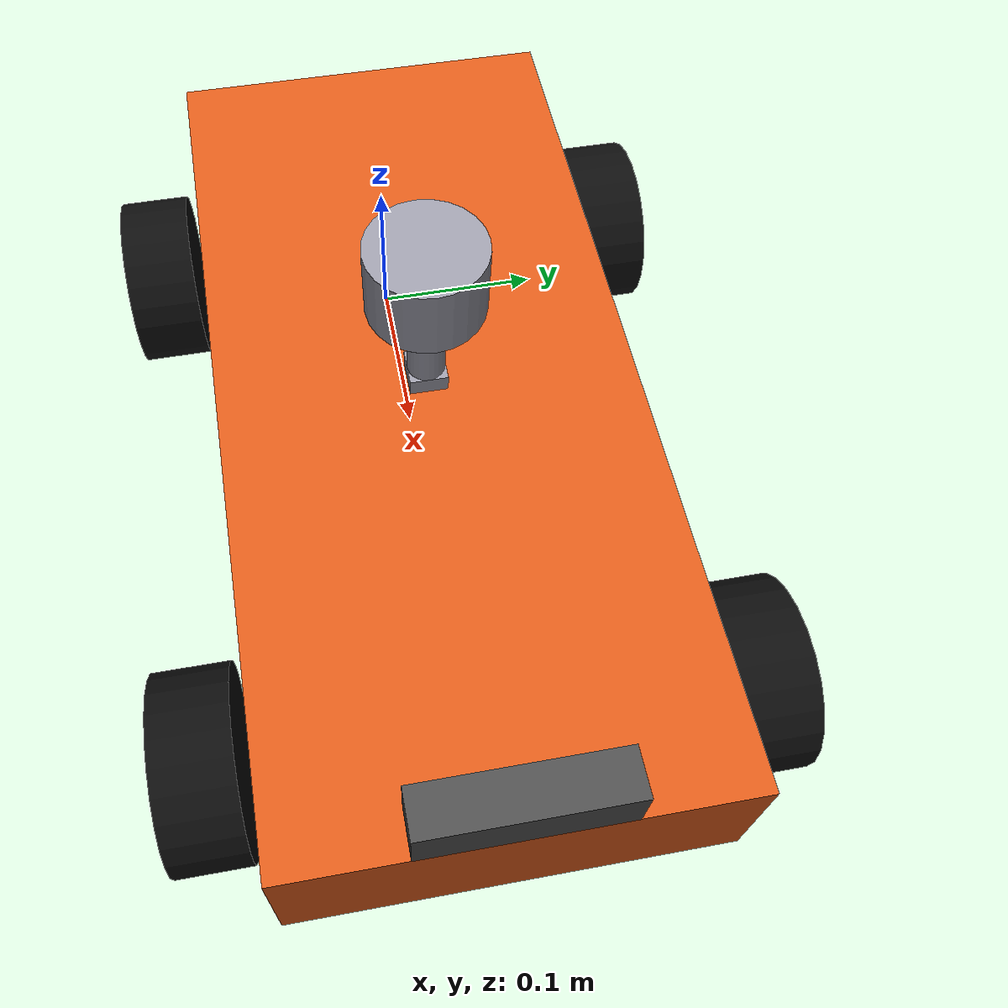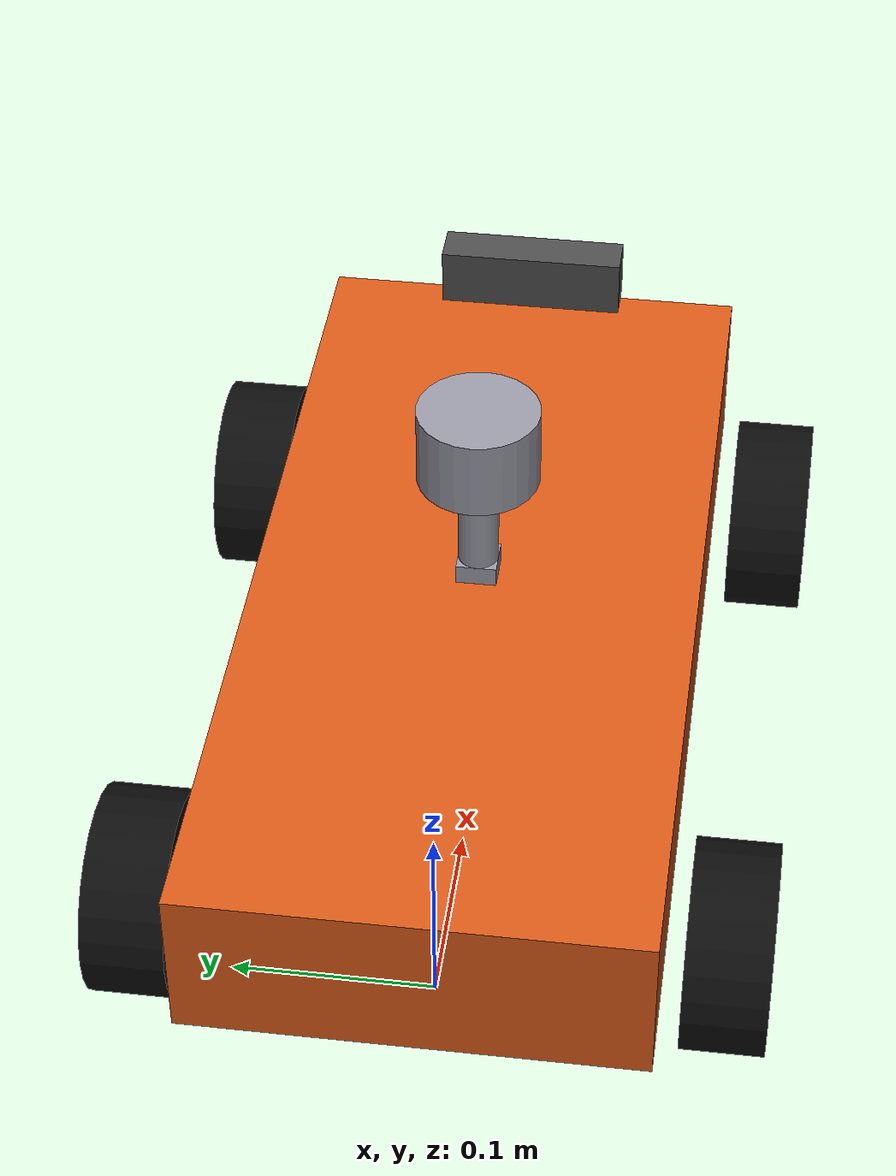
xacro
<?xml version="1.0"?>
<!-- Front-steered four-wheel car (Ackermann steering); see ackermann_car_macro.xacro. -->
<robot name="ackermann_car" xmlns:xacro="http://ros.org/wiki/xacro">
  <xacro:arg name="is_ignition" default="true"/>
  <xacro:arg name="is_sim" default="true"/>
  <!-- Gazebo model name (the launch passes the spawned robot_name; anti_ackermann_car reuses this file). -->
  <xacro:arg name="model_name" default="ackermann_car"/>
  <xacro:include filename="$(find robot_lab_robots)/description_common/urdf/oakd_camera.xacro"/>
  <xacro:include filename="$(find robot_lab_robots)/ackermann_car/urdf/ackermann_car_macro.xacro"/>
  <xacro:ackermann_car robot_name="ackermann_car" steer_axle="front"/>
</robot>

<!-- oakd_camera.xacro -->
<robot xmlns:xacro="http://ros.org/wiki/xacro">

  <xacro:macro name="dummy_inertial">
    <inertial>
      <mass value="0.0001"/>
      <inertia ixx="0.000001" ixy="0.0" ixz="0.0"
               iyy="0.000001" iyz="0.0" izz="0.000001"/>
    </inertial>
  </xacro:macro>

  <!-- Reusable OAK-D Pro / RGBD camera macro -->
  <xacro:macro name="oakd" params="name:=oakd parent_link *origin model:=pro mesh_visual:=true rate:=30">
    <xacro:property name="baseline" value="0.075"/>
    <xacro:property name="oakd_pi" value="3.1415926535897931"/>
    <xacro:property name="base_frame" value="${name}_link"/>

    <joint name="${name}_joint" type="fixed">
      <parent link="${parent_link}"/>
      <child link="${base_frame}"/>
      <xacro:insert_block name="origin"/>
    </joint>

    <link name="${base_frame}">
      <visual>
        <geometry>
          <xacro:if value="${mesh_visual}">
            <mesh filename="package://robot_lab_robots/description_common/meshes/oakd_${model}.stl" scale="1 1 1"/>
          </xacro:if>
          <xacro:unless value="${mesh_visual}">
            <box size="0.0225 0.097 0.03"/>
          </xacro:unless>
        </geometry>
        <material name="dark_grey"/>
      </visual>
      <collision>
        <origin xyz="-0.011 0 -0.005" rpy="0 0 0"/>
        <geometry>
          <box size="0.0225 0.097 0.03"/>
        </geometry>
      </collision>
      <inertial>
        <mass value="0.061"/>
        <inertia ixx="0.00000202475" ixy="0.0" ixz="0.0"
                 iyy="0.00001527320" iyz="0.0" izz="0.00001605536"/>
      </inertial>
    </link>

    <link name="${name}_rgb_camera_frame">
      <xacro:dummy_inertial/>
    </link>

    <joint name="${name}_rgb_camera_joint" type="fixed">
      <parent link="${base_frame}"/>
      <child link="${name}_rgb_camera_frame"/>
      <origin xyz="0 0 0" rpy="0 0 0"/>
    </joint>

    <link name="${name}_rgb_camera_optical_frame">
      <xacro:dummy_inertial/>
    </link>

    <joint name="${name}_rgb_camera_optical_joint" type="fixed">
      <parent link="${name}_rgb_camera_frame"/>
      <child link="${name}_rgb_camera_optical_frame"/>
      <origin xyz="0 0 0" rpy="${-oakd_pi/2} 0 ${-oakd_pi/2}"/>
    </joint>

    <link name="${name}_left_camera_frame">
      <xacro:dummy_inertial/>
    </link>

    <joint name="${name}_left_camera_joint" type="fixed">
      <parent link="${base_frame}"/>
      <child link="${name}_left_camera_frame"/>
      <origin xyz="0 ${baseline/2} 0" rpy="0 0 0"/>
    </joint>

    <link name="${name}_left_camera_optical_frame">
      <xacro:dummy_inertial/>
    </link>

    <joint name="${name}_left_camera_optical_joint" type="fixed">
      <parent link="${name}_left_camera_frame"/>
      <child link="${name}_left_camera_optical_frame"/>
      <origin xyz="0 0 0" rpy="${-oakd_pi/2} 0 ${-oakd_pi/2}"/>
    </joint>

    <link name="${name}_right_camera_frame">
      <xacro:dummy_inertial/>
    </link>

    <joint name="${name}_right_camera_joint" type="fixed">
      <parent link="${base_frame}"/>
      <child link="${name}_right_camera_frame"/>
      <origin xyz="0 ${-baseline/2} 0" rpy="0 0 0"/>
    </joint>

    <link name="${name}_right_camera_optical_frame">
      <xacro:dummy_inertial/>
    </link>

    <joint name="${name}_right_camera_optical_joint" type="fixed">
      <parent link="${name}_right_camera_frame"/>
      <child link="${name}_right_camera_optical_frame"/>
      <origin xyz="0 0 0" rpy="${-oakd_pi/2} 0 ${-oakd_pi/2}"/>
    </joint>

    <link name="${name}_imu_frame">
      <xacro:dummy_inertial/>
    </link>

    <joint name="${name}_imu_joint" type="fixed">
      <parent link="${base_frame}"/>
      <child link="${name}_imu_frame"/>
      <origin xyz="0 0 0" rpy="${-oakd_pi/2} 0 ${-oakd_pi/2}"/>
    </joint>

    <gazebo reference="${name}_rgb_camera_frame">
      <sensor name="rgbd_camera" type="rgbd_camera">
        <always_on>1</always_on>
        <update_rate>${rate}</update_rate>
        <visualize>true</visualize>
        <camera>
          <horizontal_fov>1.25</horizontal_fov>
          <image>
            <width>320</width>
            <height>240</height>
          </image>
          <clip>
            <near>0.3</near>
            <far>100</far>
          </clip>
          <optical_frame_id>${name}_rgb_camera_optical_frame</optical_frame_id>
        </camera>
      </sensor>
      <material>Gazebo/DarkGrey</material>
    </gazebo>

    <gazebo reference="${name}_joint">
      <preserveFixedJoint>true</preserveFixedJoint>
    </gazebo>
    <gazebo reference="${name}_rgb_camera_joint">
      <preserveFixedJoint>true</preserveFixedJoint>
    </gazebo>
    <gazebo reference="${name}_rgb_camera_optical_joint">
      <preserveFixedJoint>true</preserveFixedJoint>
    </gazebo>
    <gazebo reference="${name}_left_camera_joint">
      <preserveFixedJoint>true</preserveFixedJoint>
    </gazebo>
    <gazebo reference="${name}_left_camera_optical_joint">
      <preserveFixedJoint>true</preserveFixedJoint>
    </gazebo>
    <gazebo reference="${name}_right_camera_joint">
      <preserveFixedJoint>true</preserveFixedJoint>
    </gazebo>
    <gazebo reference="${name}_right_camera_optical_joint">
      <preserveFixedJoint>true</preserveFixedJoint>
    </gazebo>
    <gazebo reference="${name}_imu_joint">
      <preserveFixedJoint>true</preserveFixedJoint>
    </gazebo>
  </xacro:macro>

</robot>

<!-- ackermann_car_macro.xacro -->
<robot xmlns:xacro="http://ros.org/wiki/xacro">

  <xacro:macro name="car_wheel_inertial" params="">
    <inertial>
      <mass value="0.3"/>
      <inertia ixx="2.28e-4" ixy="0" ixz="0" iyy="3.75e-4" iyz="0" izz="2.28e-4"/>
    </inertial>
  </xacro:macro>

  <xacro:macro name="car_wheel" params="name">
    <link name="${name}_link">
      <xacro:car_wheel_inertial/>
      <visual>
        <origin xyz="0 0 0" rpy="1.5708 0 0"/>
        <geometry>
          <cylinder radius="0.05" length="0.04"/>
        </geometry>
        <material name="car_tyre"/>
      </visual>
      <collision>
        <origin xyz="0 0 0" rpy="1.5708 0 0"/>
        <geometry>
          <cylinder radius="0.05" length="0.04"/>
        </geometry>
      </collision>
    </link>
    <gazebo reference="${name}_link">
      <mu1>1.2</mu1>
      <mu2>1.2</mu2>
      <kp>1000000.0</kp>
      <kd>100.0</kd>
      <minDepth>0.001</minDepth>
      <maxVel>0.1</maxVel>
    </gazebo>
  </xacro:macro>

  <xacro:macro name="ackermann_car" params="robot_name steer_axle">
    <xacro:property name="steer_x" value="${0.32 if steer_axle == 'front' else -0.32}"/>
    <xacro:property name="body_x" value="${steer_x / 2}"/>
    <xacro:property name="fixed_axle" value="${'rear' if steer_axle == 'front' else 'front'}"/>

    <link name="base_footprint"/>

    <!-- base_link: centre of the fixed axle, at wheel-centre height. -->
    <link name="base_link">
      <inertial>
        <origin xyz="${body_x} 0 0.04" rpy="0 0 0"/>
        <mass value="3.0"/>
        <inertia ixx="1.37e-2" ixy="0" ixz="0" iyy="5.92e-2" iyz="0" izz="6.97e-2"/>
      </inertial>
      <visual>
        <origin xyz="${body_x} 0 0.04" rpy="0 0 0"/>
        <geometry>
          <box size="0.48 0.22 0.08"/>
        </geometry>
        <material name="car_body"/>
      </visual>
      <collision>
        <origin xyz="${body_x} 0 0.04" rpy="0 0 0"/>
        <geometry>
          <box size="0.48 0.16 0.08"/>
        </geometry>
      </collision>
    </link>

    <joint name="base_joint" type="fixed">
      <parent link="base_footprint"/>
      <child link="base_link"/>
      <origin xyz="0 0 0.05" rpy="0 0 0"/>
    </joint>

    <!-- Fixed axle: driven wheels whose spin gives the odometry. -->
    <xacro:car_wheel name="${fixed_axle}_left_wheel"/>
    <joint name="${fixed_axle}_left_wheel_joint" type="continuous">
      <parent link="base_link"/>
      <child link="${fixed_axle}_left_wheel_link"/>
      <origin xyz="0 0.14 0" rpy="0 0 0"/>
      <axis xyz="0 1 0"/>
      <limit effort="5.0" velocity="40.0"/>
    </joint>

    <xacro:car_wheel name="${fixed_axle}_right_wheel"/>
    <joint name="${fixed_axle}_right_wheel_joint" type="continuous">
      <parent link="base_link"/>
      <child link="${fixed_axle}_right_wheel_link"/>
      <origin xyz="0 -0.14 0" rpy="0 0 0"/>
      <axis xyz="0 1 0"/>
      <limit effort="5.0" velocity="40.0"/>
    </joint>

    <!-- Steered axle: a knuckle per side turns about z, the wheel spins in it. -->
    <xacro:macro name="steered_corner" params="side y">
      <link name="${steer_axle}_${side}_knuckle_link">
        <inertial>
          <mass value="0.1"/>
          <inertia ixx="4e-5" ixy="0" ixz="0" iyy="4e-5" iyz="0" izz="4e-5"/>
        </inertial>
        <visual>
          <geometry>
            <cylinder radius="0.012" length="0.05"/>
          </geometry>
          <material name="car_metal"/>
        </visual>
      </link>
      <joint name="${steer_axle}_${side}_steer_joint" type="revolute">
        <parent link="base_link"/>
        <child link="${steer_axle}_${side}_knuckle_link"/>
        <origin xyz="${steer_x} ${y} 0" rpy="0 0 0"/>
        <axis xyz="0 0 1"/>
        <limit lower="-0.8" upper="0.8" effort="10.0" velocity="3.0"/>
        <dynamics damping="0.1"/>
      </joint>
      <xacro:car_wheel name="${steer_axle}_${side}_wheel"/>
      <joint name="${steer_axle}_${side}_wheel_joint" type="continuous">
        <parent link="${steer_axle}_${side}_knuckle_link"/>
        <child link="${steer_axle}_${side}_wheel_link"/>
        <origin xyz="0 0 0" rpy="0 0 0"/>
        <axis xyz="0 1 0"/>
        <limit effort="5.0" velocity="40.0"/>
      </joint>
    </xacro:macro>
    <xacro:steered_corner side="left" y="0.14"/>
    <xacro:steered_corner side="right" y="-0.14"/>

    <!-- IMU at the body centre. -->
    <link name="imu_link">
      <inertial>
        <mass value="0.01"/>
        <inertia ixx="1e-6" ixy="0" ixz="0" iyy="1e-6" iyz="0" izz="1e-6"/>
      </inertial>
      <visual>
        <geometry>
          <box size="0.02 0.02 0.01"/>
        </geometry>
        <material name="car_metal"/>
      </visual>
    </link>
    <joint name="imu_joint" type="fixed">
      <parent link="base_link"/>
      <child link="imu_link"/>
      <origin xyz="${body_x} 0 0.085" rpy="0 0 0"/>
    </joint>

    <!-- 2D LiDAR on a mast above the body centre. -->
    <link name="laser_link">
      <inertial>
        <mass value="0.05"/>
        <inertia ixx="1.16e-5" ixy="0" ixz="0" iyy="1.16e-5" iyz="0" izz="1.56e-5"/>
      </inertial>
      <visual>
        <geometry>
          <cylinder radius="0.03" length="0.04"/>
        </geometry>
        <material name="car_metal"/>
      </visual>
      <collision>
        <geometry>
          <cylinder radius="0.03" length="0.04"/>
        </geometry>
      </collision>
    </link>
    <joint name="laser_joint" type="fixed">
      <parent link="base_link"/>
      <child link="laser_link"/>
      <origin xyz="${body_x} 0 0.16" rpy="0 0 0"/>
    </joint>
    <link name="laser_mast_link">
      <visual>
        <origin xyz="0 0 0.03" rpy="0 0 0"/>
        <geometry>
          <cylinder radius="0.01" length="0.06"/>
        </geometry>
        <material name="car_metal"/>
      </visual>
    </link>
    <joint name="laser_mast_joint" type="fixed">
      <parent link="base_link"/>
      <child link="laser_mast_link"/>
      <origin xyz="${body_x} 0 0.08" rpy="0 0 0"/>
    </joint>

    <!-- RGB-D camera on the front bumper, looking ahead, below the scan plane. -->
    <xacro:oakd name="oakd" parent_link="base_link" model="pro" mesh_visual="false">
      <origin xyz="${body_x + 0.23} 0 0.10" rpy="0 0 0"/>
    </xacro:oakd>

    <material name="dark_grey">
      <color rgba="0.3 0.3 0.3 1"/>
    </material>
    <material name="car_body">
      <color rgba="0.85 0.35 0.1 1"/>
    </material>
    <material name="car_tyre">
      <color rgba="0.05 0.05 0.05 1"/>
    </material>
    <material name="car_metal">
      <color rgba="0.6 0.6 0.65 1"/>
    </material>

    <!-- ros2_control: position-commanded steering, velocity-commanded wheels. -->
    <ros2_control name="${robot_name}_system" type="system">
      <xacro:if value="$(arg is_sim)">
        <xacro:if value="$(arg is_ignition)">
          <hardware>
            <plugin>ign_ros2_control/IgnitionSystem</plugin>
          </hardware>
        </xacro:if>
        <xacro:unless value="$(arg is_ignition)">
          <hardware>
            <plugin>gz_ros2_control/GazeboSimSystem</plugin>
          </hardware>
        </xacro:unless>
      </xacro:if>
      <xacro:unless value="$(arg is_sim)">
        <hardware>
          <plugin>mock_components/GenericSystem</plugin>
        </hardware>
      </xacro:unless>
      <xacro:macro name="steer_interface" params="joint">
        <joint name="${joint}">
          <command_interface name="position">
            <param name="min">-0.8</param>
            <param name="max">0.8</param>
          </command_interface>
          <state_interface name="position"/>
          <state_interface name="velocity"/>
        </joint>
      </xacro:macro>
      <xacro:macro name="wheel_interface" params="joint">
        <joint name="${joint}">
          <command_interface name="velocity">
            <param name="min">-40</param>
            <param name="max">40</param>
          </command_interface>
          <state_interface name="position"/>
          <state_interface name="velocity"/>
        </joint>
      </xacro:macro>
      <xacro:steer_interface joint="${steer_axle}_left_steer_joint"/>
      <xacro:steer_interface joint="${steer_axle}_right_steer_joint"/>
      <xacro:wheel_interface joint="${fixed_axle}_left_wheel_joint"/>
      <xacro:wheel_interface joint="${fixed_axle}_right_wheel_joint"/>
      <xacro:wheel_interface joint="${steer_axle}_left_wheel_joint"/>
      <xacro:wheel_interface joint="${steer_axle}_right_wheel_joint"/>
    </ros2_control>

    <gazebo>
      <xacro:if value="$(arg is_ignition)">
        <plugin filename="ignition-gazebo-odometry-publisher-system" name="ignition::gazebo::systems::OdometryPublisher">
          <odom_frame>world</odom_frame>
          <robot_base_frame>base_footprint</robot_base_frame>
          <odom_topic>/model/$(arg model_name)/odometry_truth</odom_topic>
          <tf_topic>/model/$(arg model_name)/truth_pose</tf_topic>
          <dimensions>3</dimensions>
          <odom_publish_frequency>50</odom_publish_frequency>
        </plugin>
      </xacro:if>
      <xacro:unless value="$(arg is_ignition)">
        <plugin filename="gz-sim-odometry-publisher-system" name="gz::sim::systems::OdometryPublisher">
          <odom_frame>world</odom_frame>
          <robot_base_frame>base_footprint</robot_base_frame>
          <odom_topic>/model/$(arg model_name)/odometry_truth</odom_topic>
          <tf_topic>/model/$(arg model_name)/truth_pose</tf_topic>
          <dimensions>3</dimensions>
          <odom_publish_frequency>50</odom_publish_frequency>
        </plugin>
      </xacro:unless>
      <xacro:if value="$(arg is_ignition)">
        <plugin filename="ign_ros2_control-system" name="ign_ros2_control::IgnitionROS2ControlPlugin">
          <parameters>$(find robot_lab_robots)/ackermann_car/config/${steer_axle}_steer_controllers.yaml</parameters>
        </plugin>
        <plugin filename="ignition-gazebo-imu-system" name="ignition::gazebo::systems::Imu"/>
        <plugin filename="ignition-gazebo-sensors-system" name="ignition::gazebo::systems::Sensors">
          <render_engine>ogre2</render_engine>
        </plugin>
      </xacro:if>
      <xacro:unless value="$(arg is_ignition)">
        <plugin filename="gz_ros2_control-system" name="gz_ros2_control::GazeboSimROS2ControlPlugin">
          <parameters>$(find robot_lab_robots)/ackermann_car/config/${steer_axle}_steer_controllers.yaml</parameters>
        </plugin>
        <plugin filename="gz-sim-imu-system" name="gz::sim::systems::Imu"/>
        <plugin filename="gz-sim-sensors-system" name="gz::sim::systems::Sensors">
          <render_engine>ogre2</render_engine>
        </plugin>
      </xacro:unless>
    </gazebo>

    <gazebo reference="imu_link">
      <sensor name="imu" type="imu">
        <always_on>true</always_on>
        <update_rate>100</update_rate>
        <gz_frame_id>imu_link</gz_frame_id>
        <topic>imu</topic>
      </sensor>
    </gazebo>

    <gazebo reference="laser_link">
      <sensor name="lidar" type="gpu_lidar">
        <always_on>true</always_on>
        <visualize>true</visualize>
        <topic>scan</topic>
        <update_rate>5</update_rate>
        <gz_frame_id>laser_link</gz_frame_id>
        <lidar>
          <scan>
            <horizontal>
              <samples>360</samples>
              <resolution>1.00000</resolution>
              <min_angle>0.000000</min_angle>
              <max_angle>6.280000</max_angle>
            </horizontal>
          </scan>
          <range>
            <min>0.120000</min>
            <max>12.0</max>
            <resolution>0.02</resolution>
          </range>
          <noise>
            <type>gaussian</type>
            <mean>0.0</mean>
            <stddev>0.01</stddev>
          </noise>
        </lidar>
      </sensor>
    </gazebo>
  </xacro:macro>

</robot>
